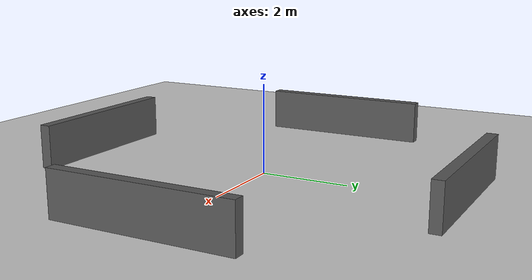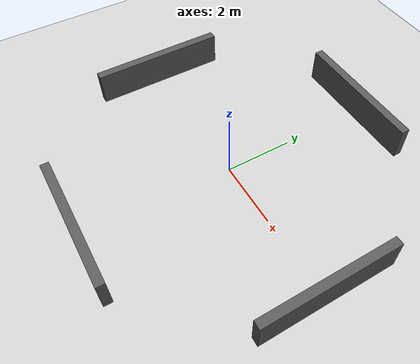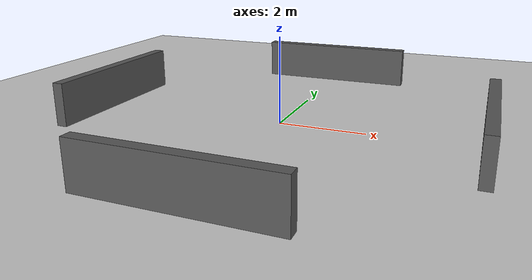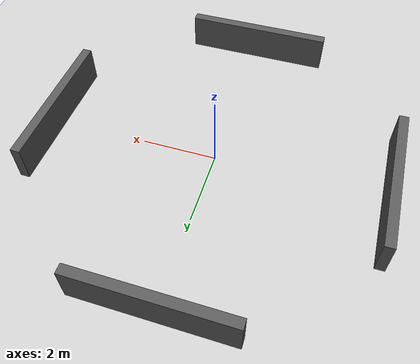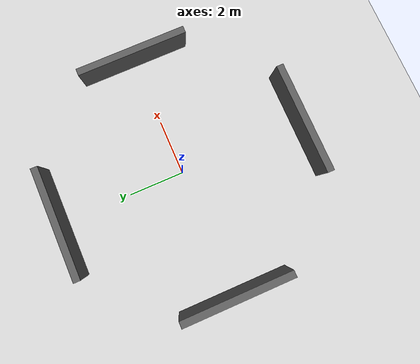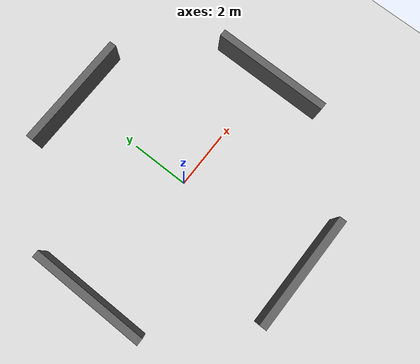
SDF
<?xml version="1.0" ?>
<sdf version="1.5">
  <world name="default">
    <physics type="ode">
      <max_step_size>0.0005</max_step_size>
      <real_time_factor>1</real_time_factor>
      <real_time_update_rate>2000</real_time_update_rate>
      <gravity>0 0 -9.81</gravity>
      <ode>
        <solver>
          <type>quick</type>
          <iters>50</iters>
          <sor>1.3</sor>
        </solver>
        <constraints>
          <cfm>0.0</cfm>
          <erp>0.2</erp>
          <contact_max_correcting_vel>10.0</contact_max_correcting_vel>
          <contact_surface_layer>0.001</contact_surface_layer>
        </constraints>
      </ode>
    </physics>

    <scene>
      <sky>
        <clouds>
          <speed>8</speed>
        </clouds>
      </sky>
    </scene>

    <include>
      <uri>model://sun</uri>
    </include>

    <include>
      <uri>model://ground_plane</uri>
    </include>

    <model name="feature_north">
      <static>true</static>
      <pose>0.0 4.5 0.5 0 0 0</pose>
      <link name="link">
        <collision name="collision">
          <geometry>
            <box>
              <size>4.0 0.25 1.0</size>
            </box>
          </geometry>
        </collision>
        <visual name="visual">
          <geometry>
            <box>
              <size>4.0 0.25 1.0</size>
            </box>
          </geometry>
          <material>
            <ambient>0.25 0.25 0.25 1.0</ambient>
            <diffuse>0.35 0.35 0.35 1.0</diffuse>
          </material>
        </visual>
      </link>
    </model>

    <model name="feature_south">
      <static>true</static>
      <pose>0.0 -4.5 0.5 0 0 0</pose>
      <link name="link">
        <collision name="collision">
          <geometry>
            <box>
              <size>4.0 0.25 1.0</size>
            </box>
          </geometry>
        </collision>
        <visual name="visual">
          <geometry>
            <box>
              <size>4.0 0.25 1.0</size>
            </box>
          </geometry>
          <material>
            <ambient>0.25 0.25 0.25 1.0</ambient>
            <diffuse>0.35 0.35 0.35 1.0</diffuse>
          </material>
        </visual>
      </link>
    </model>

    <model name="feature_east">
      <static>true</static>
      <pose>4.5 0.0 0.5 0 0 0</pose>
      <link name="link">
        <collision name="collision">
          <geometry>
            <box>
              <size>0.25 4.0 1.0</size>
            </box>
          </geometry>
        </collision>
        <visual name="visual">
          <geometry>
            <box>
              <size>0.25 4.0 1.0</size>
            </box>
          </geometry>
          <material>
            <ambient>0.25 0.25 0.25 1.0</ambient>
            <diffuse>0.35 0.35 0.35 1.0</diffuse>
          </material>
        </visual>
      </link>
    </model>

    <model name="feature_west">
      <static>true</static>
      <pose>-4.5 0.0 0.5 0 0 0</pose>
      <link name="link">
        <collision name="collision">
          <geometry>
            <box>
              <size>0.25 4.0 1.0</size>
            </box>
          </geometry>
        </collision>
        <visual name="visual">
          <geometry>
            <box>
              <size>0.25 4.0 1.0</size>
            </box>
          </geometry>
          <material>
            <ambient>0.25 0.25 0.25 1.0</ambient>
            <diffuse>0.35 0.35 0.35 1.0</diffuse>
          </material>
        </visual>
      </link>
    </model>
  </world>
</sdf>
